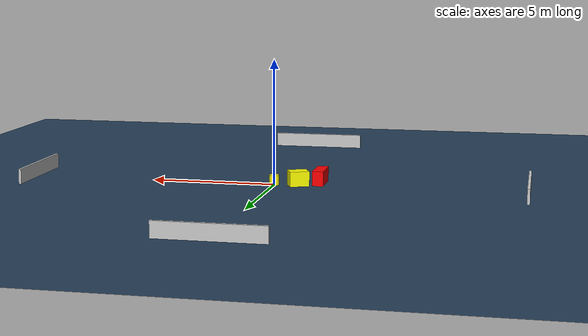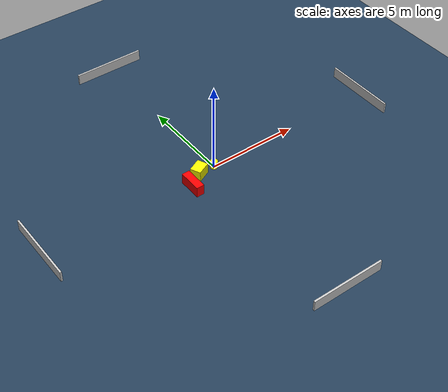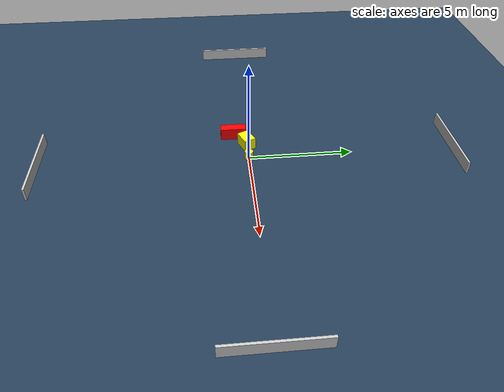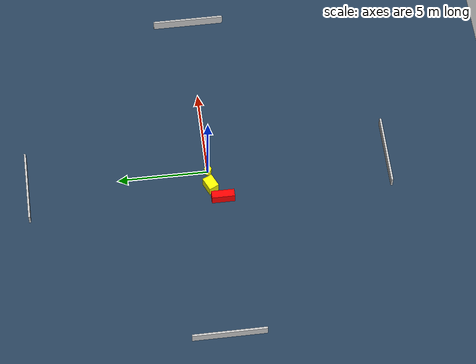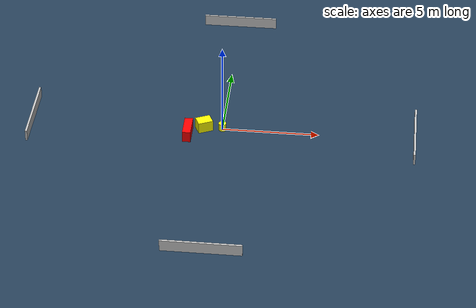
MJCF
<?xml version="1.0" ?>
<mujoco model="generated_environment">
  <option timestep="0.01" integrator="RK4" cone="elliptic"/>
  <default>
    <geom density="1"/>
  </default>
  <asset>
    <texture builtin="gradient" height="3072" name="skybox" rgb1="0.3 0.5 0.7" rgb2="0 0 0" type="skybox" width="512"/>
    <texture builtin="checker" height="300" name="groundplane" rgb1="0.2 0.3 0.4" rgb2="0.1 0.2 0.3" type="2d" width="300"/>
    <material name="groundplane" reflectance="0.2" texrepeat="5 5" texture="groundplane"/>
  </asset>
  <worldbody>
    <light dir="0 0 -1" directional="true" pos="0 0 1.5"/>
    <geom condim="3" friction="0.5 0.005 0.001" material="groundplane" name="floor" pos="0 0 0" size="0 0 0.05" type="plane"/>
    <body name="walls">
      <geom name="wall_1" condim="4" pos="-10.0 0.0 0.3" rgba="0.800000011920929 0.800000011920929 0.800000011920929 1.0" size="0.05 2.0 0.3" type="box"/>
      <geom name="wall_2" condim="4" pos="10.0 0.0 0.3" rgba="0.800000011920929 0.800000011920929 0.800000011920929 1.0" size="0.05 2.0 0.3" type="box"/>
      <geom name="wall_3" condim="4" pos="0.0 -10.0 0.3" rgba="0.800000011920929 0.800000011920929 0.800000011920929 1.0" size="2.0 0.05 0.3" type="box"/>
      <geom name="wall_4" condim="4" pos="0.0 10.0 0.3" rgba="0.800000011920929 0.800000011920929 0.800000011920929 1.0" size="2.0 0.05 0.3" type="box"/>
    </body>
    <body name="robot">
      <joint name="joint_x" type="slide" pos="0 0 0" axis="1 0 0"/>
      <joint name="joint_y" type="slide" pos="0 0 0" axis="0 1 0"/>
      <geom name="robot" type="cylinder" pos="0.0 0.0 0.2" size="0.2 0.2 0.0" mass="5.0" friction="1.0 0.005 0.0001" condim="4" rgba="1.0 1.0 0.0 1.0"/>
    </body>
    <body name="obstacle_1_movable">
      <geom name="obstacle_1_movable" condim="4" pos="-0.9607347005832337 -0.04324435700353309 0.3" euler="0 0 204.7596333622984" friction="0.0 0.005 0.001" rgba="1.0 1.0 0.0 1.0" size="0.3898210063378936 0.29065094610542297 0.3" type="box" mass="0.1"/>
      <joint type="free"/>
    </body>
    <body name="obstacle_2_static">
      <geom name="obstacle_2_static" condim="4" pos="-1.756798247491681 -0.6363482609852426 0.3" euler="0 0 90.09222321050468" friction="0.0 0.005 0.001" rgba="1.0 0.0 0.0 1.0" size="0.6332935125643756 0.21559895219605588 0.3" type="box"/>
    </body>
  </worldbody>
  <actuator>
    <motor name="actuator_x" joint="joint_x" gear="1" ctrlrange="-1 1"/>
    <motor name="actuator_y" joint="joint_y" gear="1" ctrlrange="-1 1"/>
  </actuator>
</mujoco>
